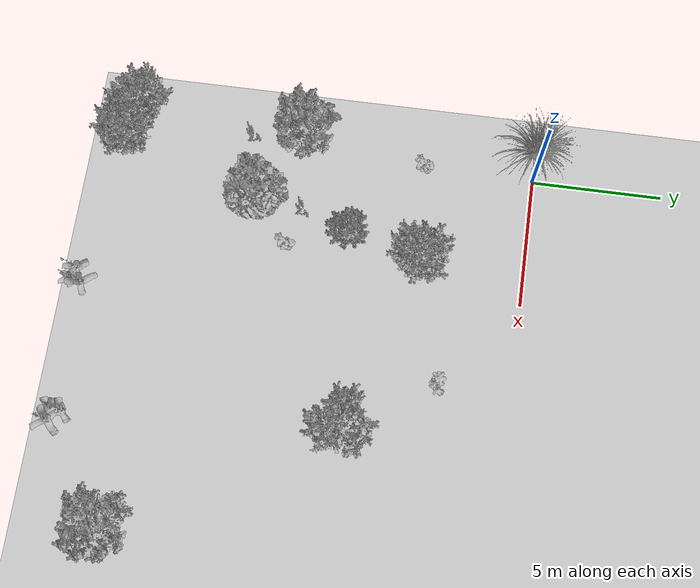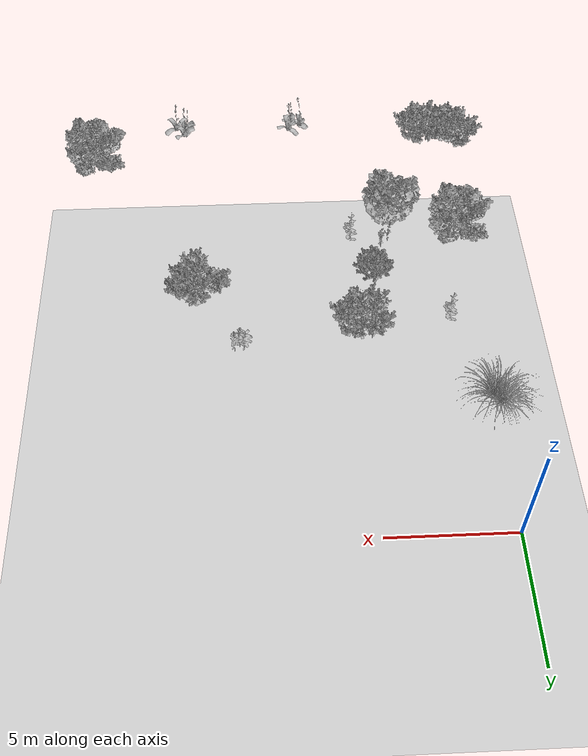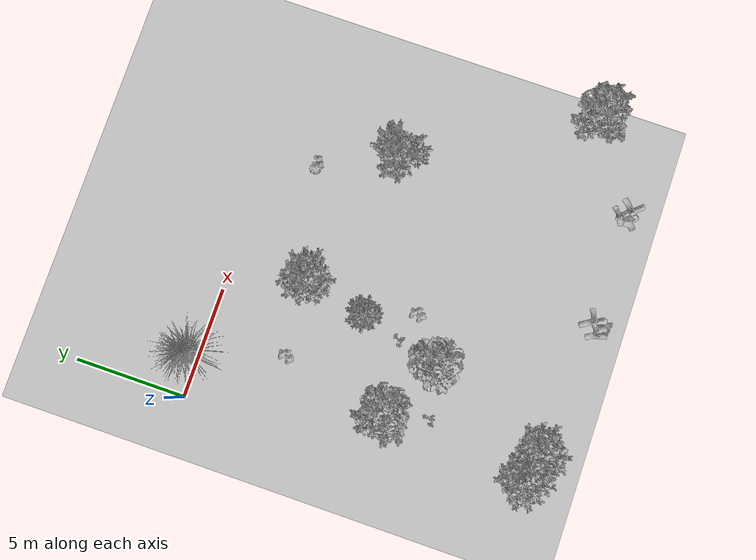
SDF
<sdf version="1.7">
 <world name="default">
  <model name="ground_plane">
   <static>1</static>
   <link name="link">
    <collision name="collision">
     <geometry><plane><normal>0 0 1</normal><size>100 100</size></plane></geometry>
     <surface><friction><ode><mu>100</mu><mu2>50</mu2></ode></friction></surface>
    </collision>
    <visual name="visual">
     <cast_shadows>0</cast_shadows>
     <geometry><plane><normal>0 0 1</normal><size>100 100</size></plane></geometry>
     <material>
      <script><uri>file://media/materials/scripts/gazebo.material</uri><name>Gazebo/Grey</name></script>
     </material>
    </visual>
   </link>
  </model>
  <model name="Model_683">
   <static>1</static>
   <link name="link">
    <visual name="branch"><geometry><mesh><uri>model://bush5/meshes/OC29_5.obj</uri></mesh></geometry></visual>
   </link>
   <pose>4.306 -9.086 7.11765 0 -0 1.7796</pose>
  </model>
  <model name="Model_696">
   <static>1</static>
   <link name="link">
    <visual name="branch"><geometry><mesh><uri>model://bush2/meshes/OC29_2.obj</uri></mesh></geometry></visual>
   </link>
   <pose>5.834 -3.806 7.47059 0 -0 2.03838</pose>
  </model>
  <model name="Model_707">
   <static>1</static>
   <link name="link">
    <visual name="branch"><geometry><mesh><uri>model://bush8/meshes/OC29_8.obj</uri></mesh></geometry></visual>
   </link>
   <pose>2.482 -7.896 7.23529 0 -0 0.348167</pose>
  </model>
  <model name="Model_729">
   <static>1</static>
   <link name="link">
    <visual name="branch"><geometry><mesh><uri>model://bush3/meshes/OC29_3.obj</uri></mesh></geometry></visual>
   </link>
   <pose>11.144 -5.406 7.41176 0 -0 0.210018</pose>
  </model>
  <model name="Model_753">
   <static>1</static>
   <link name="link">
    <visual name="branch"><geometry><mesh><uri>model://bush8/meshes/OC29_8.obj</uri></mesh></geometry></visual>
   </link>
   <pose>15.139 -11.915 7.17647 0 -0 0.457407</pose>
  </model>
  <model name="Model_756">
   <static>1</static>
   <link name="link">
    <visual name="branch"><geometry><mesh><uri>model://bush2/meshes/OC29_2.obj</uri></mesh></geometry></visual>
   </link>
   <pose>1.621 -13.323 6.88235 0 -0 3.01957</pose>
  </model>
  <model name="Model_757">
   <static>1</static>
   <link name="link">
    <visual name="branch"><geometry><mesh><uri>model://bush2/meshes/OC29_2.obj</uri></mesh></geometry></visual>
   </link>
   <pose>2.757 -13.629 6.88235 0 -0 1.97608</pose>
  </model>
  <model name="Model_840">
   <static>1</static>
   <link name="link">
    <visual name="branch"><geometry><mesh><uri>model://bush1/meshes/OC29_1.obj</uri></mesh></geometry></visual>
   </link>
   <pose>5.249 -6.137 7.35294 0 -0 0.570686</pose>
  </model>
  <model name="Model_994">
   <static>1</static>
   <link name="link">
    <visual name="branch"><geometry><mesh><uri>model://weed1/meshes/GC02_1.obj</uri></mesh></geometry></visual>
   </link>
   <link name="weed1_2">
    <visual name="weed1_2"><geometry><mesh><uri>model://weed1/meshes/GC02_2.obj</uri></mesh></geometry></visual>
    <pose>0.15 -0.15 0 0 -0 0</pose>
   </link>
   <link name="weed1_3">
    <visual name="weed1_3"><geometry><mesh><uri>model://weed1/meshes/GC02_3.obj</uri></mesh></geometry></visual>
    <pose>0.15 0.15 0 0 -0 0</pose>
   </link>
   <pose>3.087 -4.033 7.47059 0 -0 2.84741</pose>
  </model>
  <model name="Model_1053">
   <static>1</static>
   <link name="weed4_1">
    <visual name="branch"><geometry><mesh><uri>model://weed4/meshes/GC09_1.obj</uri></mesh></geometry></visual>
   </link>
   <link name="weed4_2">
    <visual name="weed4_2"><geometry><mesh><uri>model://weed4/meshes/GC09_2.obj</uri></mesh></geometry></visual>
    <pose>0.15 -0.15 0 0 -0 0</pose>
   </link>
   <link name="weed4_3">
    <visual name="weed4_3"><geometry><mesh><uri>model://weed4/meshes/GC09_3.obj</uri></mesh></geometry></visual>
    <pose>0.15 0.15 0 0 -0 0</pose>
   </link>
   <pose>4.842 -7.641 7.23529 0 -0 2.22197</pose>
  </model>
  <model name="Model_1086">
   <static>1</static>
   <link name="link">
    <visual name="weed6_1"><geometry><mesh><uri>model://weed6/meshes/GC16_1.obj</uri></mesh></geometry></visual>
   </link>
   <link name="weed6_2">
    <visual name="weed6_2"><geometry><mesh><uri>model://weed6/meshes/GC16_2.obj</uri></mesh></geometry></visual>
    <pose>0.25 -0.25 0 0 -0 0</pose>
   </link>
   <link name="weed6_3">
    <visual name="weed6_3"><geometry><mesh><uri>model://weed6/meshes/GC16_3.obj</uri></mesh></geometry></visual>
    <pose>0.25 0.25 0 0 -0 0</pose>
   </link>
   <pose>11.719 -14.136 7 0 -0 0.736196</pose>
  </model>
  <model name="Model_1107">
   <static>1</static>
   <link name="weed8_1">
    <visual name="weed8_1"><geometry><mesh><uri>model://weed8/meshes/GC23_v1.obj</uri></mesh></geometry></visual>
   </link>
   <link name="weed8_2">
    <visual name="weed8_2"><geometry><mesh><uri>model://weed8/meshes/GC23_v2.obj</uri></mesh></geometry></visual>
    <pose>0.25 -0.25 0 0 -0 0</pose>
   </link>
   <pose>2.063 -0.682 7.64706 0 -0 3.06413</pose>
  </model>
  <model name="Model_1128">
   <static>1</static>
   <link name="weed4_1">
    <visual name="branch"><geometry><mesh><uri>model://weed4/meshes/GC09_1.obj</uri></mesh></geometry></visual>
   </link>
   <link name="weed4_2">
    <visual name="weed4_2"><geometry><mesh><uri>model://weed4/meshes/GC09_2.obj</uri></mesh></geometry></visual>
    <pose>0.15 -0.15 0 0 -0 0</pose>
   </link>
   <link name="weed4_3">
    <visual name="weed4_3"><geometry><mesh><uri>model://weed4/meshes/GC09_3.obj</uri></mesh></geometry></visual>
    <pose>0.15 0.15 0 0 -0 0</pose>
   </link>
   <pose>2.567 -9.524 7.11765 0 -0 2.51896</pose>
  </model>
  <model name="Model_1172">
   <static>1</static>
   <link name="link">
    <visual name="weed6_1"><geometry><mesh><uri>model://weed6/meshes/GC16_1.obj</uri></mesh></geometry></visual>
   </link>
   <link name="weed6_2">
    <visual name="weed6_2"><geometry><mesh><uri>model://weed6/meshes/GC16_2.obj</uri></mesh></geometry></visual>
    <pose>0.25 -0.25 0 0 -0 0</pose>
   </link>
   <link name="weed6_3">
    <visual name="weed6_3"><geometry><mesh><uri>model://weed6/meshes/GC16_3.obj</uri></mesh></geometry></visual>
    <pose>0.25 0.25 0 0 -0 0</pose>
   </link>
   <pose>7.685 -14.389 6.94118 0 -0 2.10049</pose>
  </model>
  <model name="Model_1226">
   <static>1</static>
   <link name="weed2_1">
    <visual name="branch"><geometry><mesh><uri>model://weed2/meshes/GC03_1.obj</uri></mesh></geometry></visual>
   </link>
   <link name="weed2_2">
    <visual name="weed2_2"><geometry><mesh><uri>model://weed2/meshes/GC03_2.obj</uri></mesh></geometry></visual>
    <pose>0.15 -0.15 0 0 -0 0</pose>
   </link>
   <link name="weed2_3">
    <visual name="weed2_3"><geometry><mesh><uri>model://weed2/meshes/GC03_3.obj</uri></mesh></geometry></visual>
    <pose>0.15 0.15 0 0 -0 0</pose>
   </link>
   <pose>9.753 -2.927 7.58824 0 -0 1.50189</pose>
  </model>
  <model name="Model_1280">
   <static>1</static>
   <link name="link">
    <visual name="branch"><geometry><mesh><uri>model://weed1/meshes/GC02_1.obj</uri></mesh></geometry></visual>
   </link>
   <link name="weed1_2">
    <visual name="weed1_2"><geometry><mesh><uri>model://weed1/meshes/GC02_2.obj</uri></mesh></geometry></visual>
    <pose>0.15 -0.15 0 0 -0 0</pose>
   </link>
   <link name="weed1_3">
    <visual name="weed1_3"><geometry><mesh><uri>model://weed1/meshes/GC02_3.obj</uri></mesh></geometry></visual>
    <pose>0.15 0.15 0 0 -0 0</pose>
   </link>
   <pose>6.024 -7.949 7.23529 0 -0 2.92926</pose>
  </model>
 </world>
</sdf>
